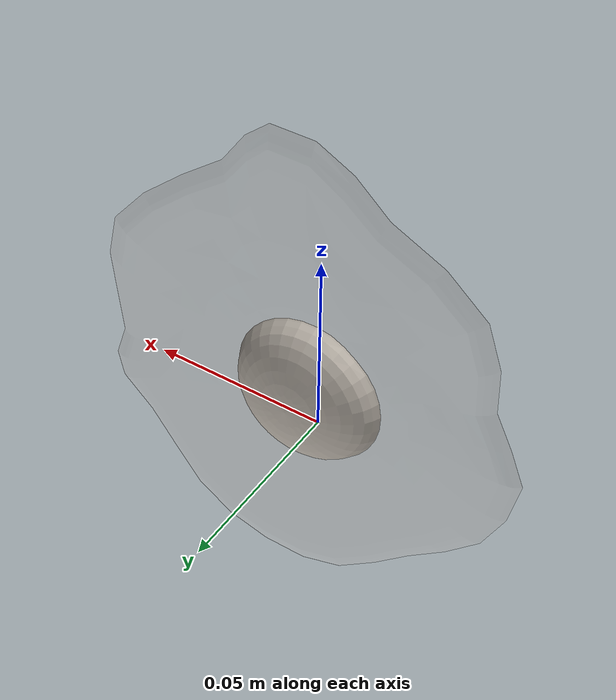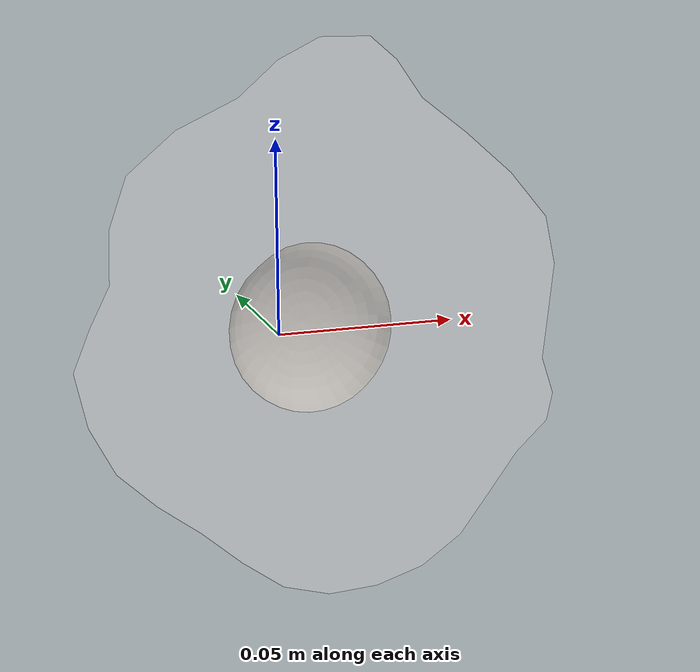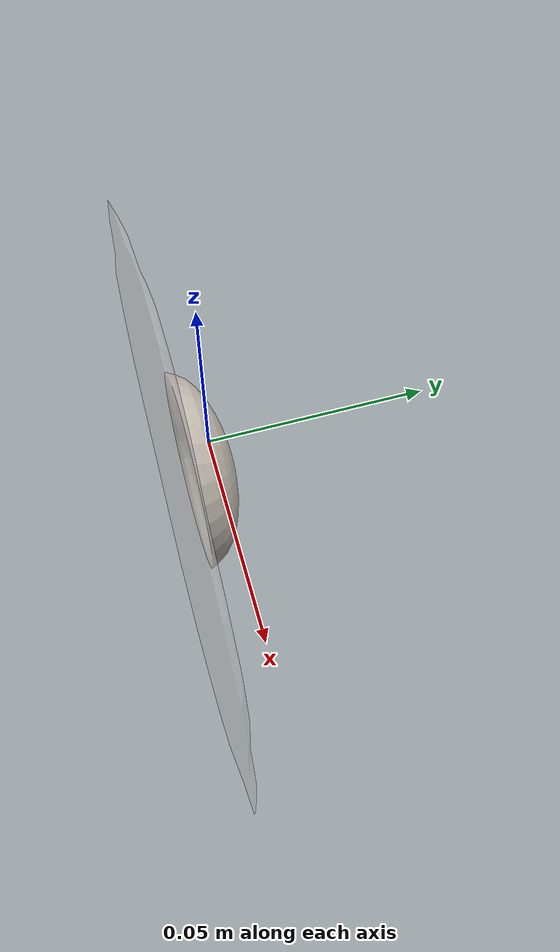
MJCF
<mujoco model="Egg_Cracked_30">
  <compiler autolimits="true" boundmass="0.01" angle="radian"/>
  <default>
    <default class="/">
      <default class="__VISUAL_MJT__">
        <geom contype="0" conaffinity="0" group="0"/>
      </default>
      <default class="__STRUCTURAL_MJT__">
        <geom contype="8" conaffinity="15" group="4" friction="0.90000000000000002 0.90000000000000002 0.001" solref="0.025000000000000001 1" solimp="0.998 0.998 0.001"/>
      </default>
      <default class="__DYNAMIC_MJT__">
        <geom contype="1" conaffinity="15" group="4" friction="0.90000000000000002 0.90000000000000002 0.001" solref="0.025000000000000001 1" solimp="0.998 0.998 0.001"/>
      </default>
    </default>
  </default>
  <asset>
    <texture name="Fried_Egg_White_Uncooked_Mat" type="2d" file="Fried_Egg_AlbedoTransparency.png"/>
    <material name="material_Fried_Egg_White_Uncooked_Mat" class="/" texture="Fried_Egg_White_Uncooked_Mat" specular="0.5" shininess="0.5" rgba="1 1 1 0.5"/>
    <texture name="Fried_Egg_Yolk_Mat" type="2d" file="Fried_Egg_AlbedoTransparency.png"/>
    <material name="material_Fried_Egg_Yolk_Mat" class="/" texture="Fried_Egg_Yolk_Mat" specular="0.5" shininess="0.5" rgba="1 1 1 1"/>
    <mesh name="Egg_Cracked_30_fried_egg_30_0" class="/" file="Egg_Cracked_30_fried_egg_30/Egg_Cracked_30_fried_egg_30_0.obj" scale="1 1 1"/>
    <mesh name="Egg_Cracked_30_fried_egg_30_1" class="/" file="Egg_Cracked_30_fried_egg_30/Egg_Cracked_30_fried_egg_30_1.obj" scale="1 1 1"/>
  </asset>
  <worldbody>
    <body name="Egg_Cracked_30">
      <joint name="Egg_Cracked_30_free" class="/" type="free" pos="0 0 0" axis="0 0 1" stiffness="0" range="0 0" armature="0" damping="0.10000000000000001" frictionloss="0"/>
      <body name="Egg_Cracked_30_fried_egg_30" pos="0.0065100000000000002 -0.01023 0.0030999999999999999" quat="1 0 0 0">
        <geom name="Egg_Cracked_30_fried_egg_30_0" class="__VISUAL_MJT__" type="mesh" material="material_Fried_Egg_White_Uncooked_Mat" shellinertia="false" mesh="Egg_Cracked_30_fried_egg_30_0"/>
        <geom name="Egg_Cracked_30_fried_egg_30_1" class="__VISUAL_MJT__" type="mesh" material="material_Fried_Egg_Yolk_Mat" shellinertia="false" mesh="Egg_Cracked_30_fried_egg_30_1"/>
        <geom name="Egg_Cracked_30_PrimitiveCollider_0" class="__DYNAMIC_MJT__" type="box" size="0.065258890390396118 0.010231256484985352 0.073912344872951508" rgba="0 1 0 1" pos="0.0065115988254547119 0.010231256484985352 -0.003099881112575531" quat="1 0 0 0"/>
      </body>
    </body>
  </worldbody>
</mujoco>
